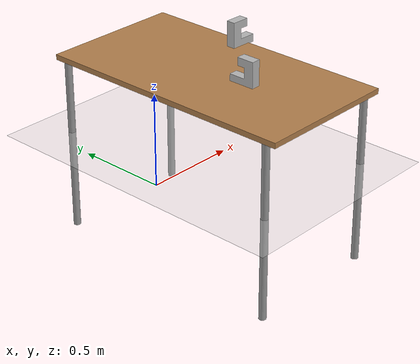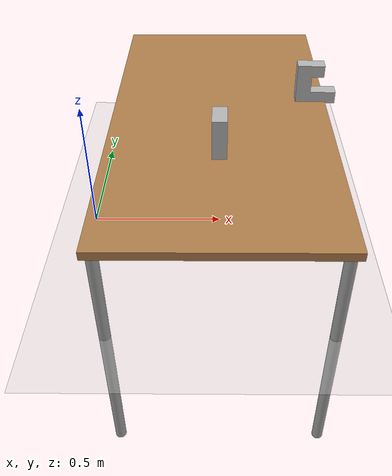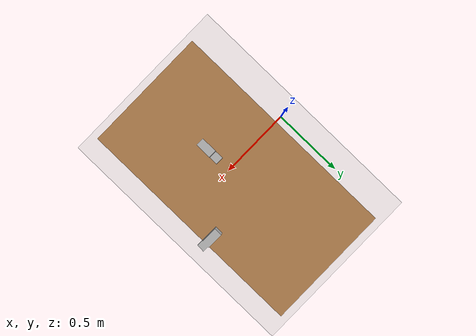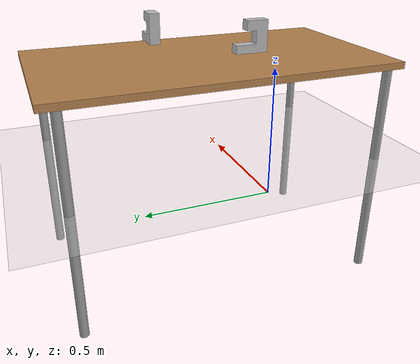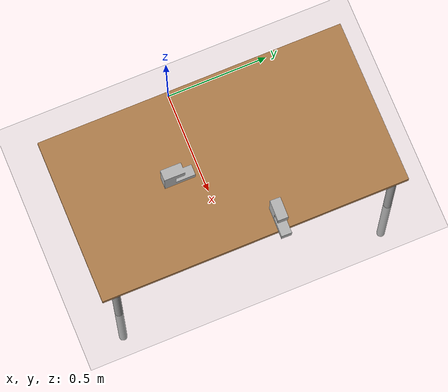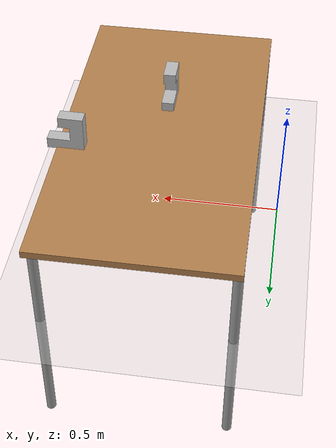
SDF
<sdf version="1.4">
 <world name="default">
  <light name="sun" type="directional">
   <pose>0 0 10 0 -0 0</pose>
   <diffuse>0.8 0.8 0.8 1</diffuse>
   <specular>0.2 0.2 0.2 1</specular>
   <attenuation>
    <range>1000</range>
    <constant>0.9</constant>
    <linear>0.01</linear>
    <quadratic>0.001</quadratic>
   </attenuation>
   <direction>-0.5 0.1 -0.9</direction>
  </light>
  <model name="ground_plane">
   <static>1</static>
   <link name="link">
    <collision name="collision">
     <geometry><plane><normal>0 0 1</normal><size>100 100</size></plane></geometry>
     <surface><friction><ode><mu>100</mu><mu2>50</mu2></ode></friction></surface>
    </collision>
    <visual name="visual">
     <cast_shadows>0</cast_shadows>
     <geometry><plane><normal>0 0 1</normal><size>100 100</size></plane></geometry>
     <material>
      <script><uri>file://media/materials/scripts/gazebo.material</uri><name>Gazebo/Grey</name></script>
     </material>
    </visual>
    <velocity_decay><linear>0</linear><angular>0</angular></velocity_decay>
   </link>
  </model>
  <model name="held_piece">
   <pose>0.841692 0.208785 0.501041 1.5708 -1e-06 3.11932</pose>
   <link name="link">
    <inertial>
     <mass>0.01</mass>
     <inertia><ixx>1</ixx><ixy>0</ixy><ixz>0</ixz><iyy>1</iyy><iyz>0</iyz><izz>1</izz></inertia>
    </inertial>
    <collision name="collision">
     <geometry><mesh><uri>model://piece/meshes/piece.stl</uri><scale>0.05 0.05 0.0254</scale></mesh></geometry>
     <surface><friction><ode><mu>0.6</mu><mu2>0.6</mu2></ode></friction></surface>
    </collision>
    <visual name="visual">
     <geometry><mesh><uri>model://piece/meshes/piece.stl</uri><scale>0.05 0.05 0.0254</scale></mesh></geometry>
    </visual>
    <velocity_decay><linear>0</linear><angular>0</angular></velocity_decay>
   </link>
   <static>0</static>
  </model>
  <model name="fixed_piece">
   <static>1</static>
   <pose>0.495596 -0.1628 0.499937 1.57159 0.001593 -1.57159</pose>
   <link name="link">
    <collision name="collision">
     <geometry><mesh><uri>model://piece/meshes/piece.stl</uri><scale>0.05 0.05 0.0254</scale></mesh></geometry>
     <surface><friction><ode><mu>0.6</mu><mu2>0.6</mu2></ode></friction></surface>
    </collision>
    <visual name="visual">
     <geometry><mesh><uri>model://piece/meshes/piece.stl</uri><scale>0.05 0.05 0.0254</scale></mesh></geometry>
    </visual>
    <velocity_decay><linear>0</linear><angular>0</angular></velocity_decay>
   </link>
   <static>0</static>
  </model>
  <physics type="ode">
   <max_step_size>0.001</max_step_size>
   <real_time_factor>1</real_time_factor>
   <real_time_update_rate>1000.0</real_time_update_rate>
   <gravity>0 0 -9.8</gravity>
  </physics>
  <scene><ambient>0.4 0.4 0.4 1</ambient><background>0.7 0.7 0.7 1</background><shadows>1</shadows></scene>
  <spherical_coordinates>
   <surface_model>EARTH_WGS84</surface_model>
   <latitude_deg>0</latitude_deg>
   <longitude_deg>0</longitude_deg>
   <elevation>0</elevation>
   <heading_deg>0</heading_deg>
  </spherical_coordinates>
  <model name="table">
   <static>1</static>
   <link name="link">
    <collision name="surface">
     <pose>0 0 1 0 -0 0</pose>
     <geometry><box><size>1.5 0.8 0.03</size></box></geometry>
     <surface><friction><ode><mu>0.6</mu><mu2>0.6</mu2></ode></friction></surface>
    </collision>
    <visual name="visual1">
     <pose>0 0 1 0 -0 0</pose>
     <geometry><box><size>1.5 0.8 0.03</size></box></geometry>
     <material>
      <script><uri>file://media/materials/scripts/gazebo.material</uri><name>Gazebo/Wood</name></script>
     </material>
    </visual>
    <collision name="front_left_leg">
     <pose>0.68 0.38 0.5 0 -0 0</pose>
     <geometry><cylinder><radius>0.02</radius><length>1</length></cylinder></geometry>
    </collision>
    <visual name="front_left_leg">
     <pose>0.68 0.38 0.5 0 -0 0</pose>
     <geometry><cylinder><radius>0.02</radius><length>1</length></cylinder></geometry>
     <material>
      <script><uri>file://media/materials/scripts/gazebo.material</uri><name>Gazebo/Grey</name></script>
     </material>
    </visual>
    <collision name="front_right_leg">
     <pose>0.68 -0.38 0.5 0 -0 0</pose>
     <geometry><cylinder><radius>0.02</radius><length>1</length></cylinder></geometry>
    </collision>
    <visual name="front_right_leg">
     <pose>0.68 -0.38 0.5 0 -0 0</pose>
     <geometry><cylinder><radius>0.02</radius><length>1</length></cylinder></geometry>
     <material>
      <script><uri>file://media/materials/scripts/gazebo.material</uri><name>Gazebo/Grey</name></script>
     </material>
    </visual>
    <collision name="back_right_leg">
     <pose>-0.68 -0.38 0.5 0 -0 0</pose>
     <geometry><cylinder><radius>0.02</radius><length>1</length></cylinder></geometry>
    </collision>
    <visual name="back_right_leg">
     <pose>-0.68 -0.38 0.5 0 -0 0</pose>
     <geometry><cylinder><radius>0.02</radius><length>1</length></cylinder></geometry>
     <material>
      <script><uri>file://media/materials/scripts/gazebo.material</uri><name>Gazebo/Grey</name></script>
     </material>
    </visual>
    <collision name="back_left_leg">
     <pose>-0.68 0.38 0.5 0 -0 0</pose>
     <geometry><cylinder><radius>0.02</radius><length>1</length></cylinder></geometry>
    </collision>
    <visual name="back_left_leg">
     <pose>-0.68 0.38 0.5 0 -0 0</pose>
     <geometry><cylinder><radius>0.02</radius><length>1</length></cylinder></geometry>
     <material>
      <script><uri>file://media/materials/scripts/gazebo.material</uri><name>Gazebo/Grey</name></script>
     </material>
    </visual>
    <velocity_decay><linear>0</linear><angular>0</angular></velocity_decay>
   </link>
   <pose>0.5 0.075 -0.58 0 0 -1.57</pose>
  </model>
 </world>
</sdf>
